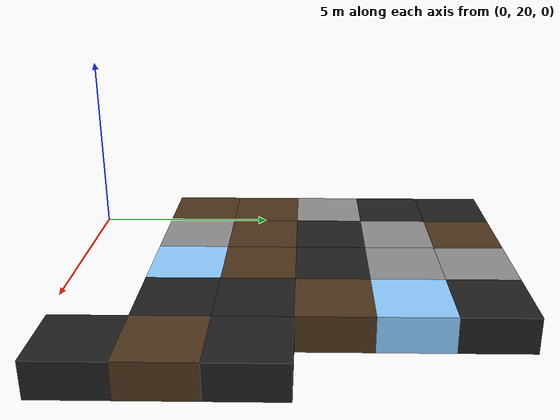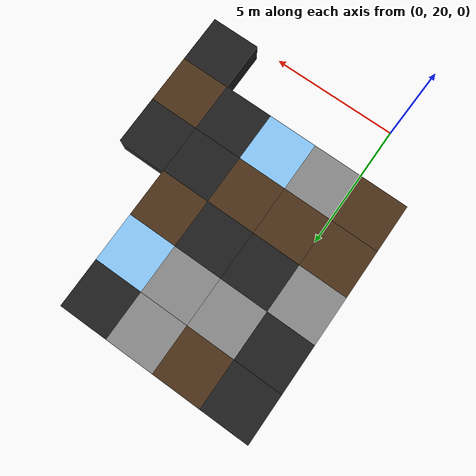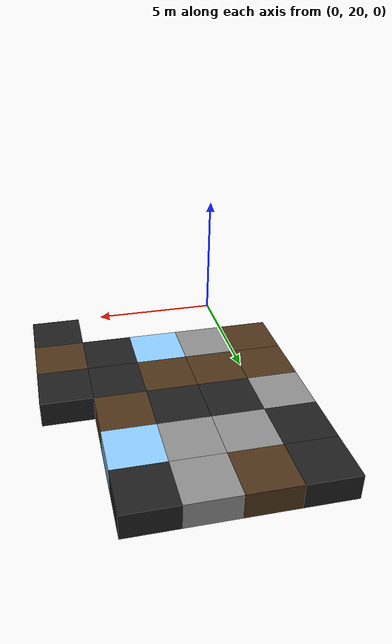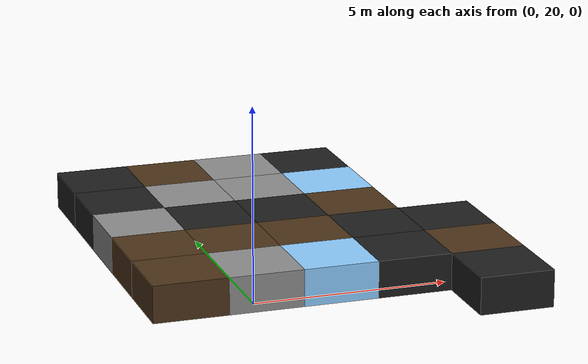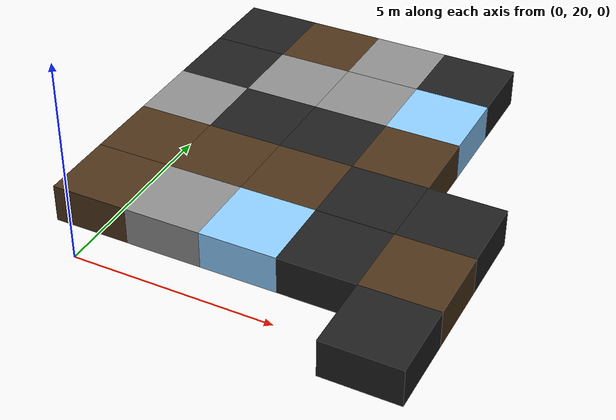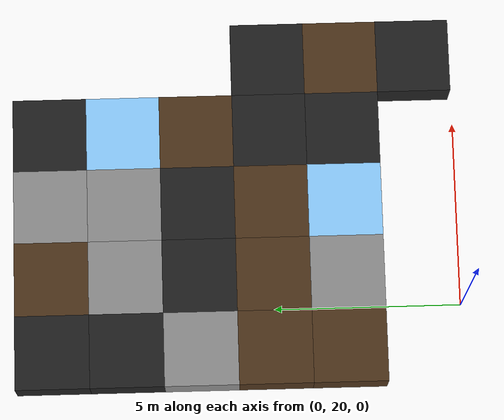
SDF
<sdf version="1.5">
 <world name="squares_example">
  <model name="tile_19_26">
   <static>true</static>
   <pose>7.000 21.000 -0.500 0 0 0</pose>
   <link name="link">
    <collision name="col">
     <geometry><box><size>2.0 2.0 1.0</size></box></geometry>
     <surface>
      <friction>
       <ode><mu>0.4</mu><mu2>0.15</mu2><fdir1>1 0 0</fdir1><slip1>0.0</slip1><slip2>0.0</slip2></ode>
       <torsional>
        <coefficient>0.03</coefficient>
        <use_patch_radius>false</use_patch_radius>
        <surface_radius>0.12</surface_radius>
        <ode><slip>0.0</slip></ode>
       </torsional>
      </friction>
      <bounce><restitution_coefficient>0.0</restitution_coefficient><threshold>0.1</threshold></bounce>
      <contact>
       <ode><kp>1000000000.0</kp><kd>1000000.0</kd><max_vel>0.01</max_vel><min_depth>0.0</min_depth></ode>
      </contact>
     </surface>
    </collision>
    <visual name="visual">
     <geometry><box><size>2.0 2.0 1.0</size></box></geometry>
     <material>
      <diffuse>0.12 0.12 0.12 1</diffuse>
      <ambient>0 0 0 0</ambient>
      <specular>0 0 0 1</specular>
      <emissive>0 0 0 1</emissive>
     </material>
    </visual>
   </link>
  </model>
  <model name="tile_15_27">
   <static>true</static>
   <pose>-1.000 23.000 -0.500 0 0 0</pose>
   <link name="link">
    <collision name="col">
     <geometry><box><size>2.0 2.0 1.0</size></box></geometry>
     <surface>
      <friction>
       <ode><mu>0.6</mu><mu2>0.4</mu2><fdir1>1 0 0</fdir1><slip1>0.08</slip1><slip2>0.08</slip2></ode>
       <torsional>
        <coefficient>0.03</coefficient>
        <use_patch_radius>false</use_patch_radius>
        <surface_radius>0.12</surface_radius>
        <ode><slip>0.0</slip></ode>
       </torsional>
      </friction>
      <bounce><restitution_coefficient>0.0</restitution_coefficient><threshold>0.1</threshold></bounce>
      <contact>
       <ode><kp>1000000.0</kp><kd>10000.0</kd><max_vel>0.01</max_vel><min_depth>0.0</min_depth></ode>
      </contact>
     </surface>
    </collision>
    <visual name="visual">
     <geometry><box><size>2.0 2.0 1.0</size></box></geometry>
     <material>
      <diffuse>0.30 0.20 0.10 1</diffuse>
      <ambient>0 0 0 0</ambient>
      <specular>0 0 0 1</specular>
      <emissive>0 0 0 1</emissive>
     </material>
    </visual>
   </link>
  </model>
  <model name="tile_16_27">
   <static>true</static>
   <pose>1.000 23.000 -0.500 0 0 0</pose>
   <link name="link">
    <collision name="col">
     <geometry><box><size>2.0 2.0 1.0</size></box></geometry>
     <surface>
      <friction>
       <ode><mu>0.8</mu><mu2>0.3</mu2><fdir1>1 0 0</fdir1><slip1>0.0</slip1><slip2>0.0</slip2></ode>
       <torsional>
        <coefficient>0.03</coefficient>
        <use_patch_radius>false</use_patch_radius>
        <surface_radius>0.12</surface_radius>
        <ode><slip>0.0</slip></ode>
       </torsional>
      </friction>
      <bounce><restitution_coefficient>0.0</restitution_coefficient><threshold>0.1</threshold></bounce>
      <contact>
       <ode><kp>10000000000.0</kp><kd>10000000.0</kd><max_vel>0.01</max_vel><min_depth>0.0</min_depth></ode>
      </contact>
     </surface>
    </collision>
    <visual name="visual">
     <geometry><box><size>2.0 2.0 1.0</size></box></geometry>
     <material>
      <diffuse>0.55 0.55 0.55 1</diffuse>
      <ambient>0 0 0 0</ambient>
      <specular>0 0 0 1</specular>
      <emissive>0 0 0 1</emissive>
     </material>
    </visual>
   </link>
  </model>
  <model name="tile_17_27">
   <static>true</static>
   <pose>3.000 23.000 -0.500 0 0 0</pose>
   <link name="link">
    <collision name="col">
     <geometry><box><size>2.0 2.0 1.0</size></box></geometry>
     <surface>
      <friction>
       <ode><mu>0.03</mu><mu2>0.02</mu2><fdir1>1 0 0</fdir1><slip1>0.03</slip1><slip2>0.03</slip2></ode>
       <torsional>
        <coefficient>0.005</coefficient>
        <use_patch_radius>false</use_patch_radius>
        <surface_radius>0.12</surface_radius>
        <ode><slip>0.01</slip></ode>
       </torsional>
      </friction>
      <bounce><restitution_coefficient>0.0</restitution_coefficient><threshold>0.1</threshold></bounce>
      <contact>
       <ode><kp>10000000.0</kp><kd>1000.0</kd><max_vel>0.01</max_vel><min_depth>0.0</min_depth></ode>
      </contact>
     </surface>
    </collision>
    <visual name="visual">
     <geometry><box><size>2.0 2.0 1.0</size></box></geometry>
     <material>
      <diffuse>0.55 0.80 1.00 1</diffuse>
      <ambient>0 0 0 0</ambient>
      <specular>0 0 0 1</specular>
      <emissive>0 0 0 1</emissive>
     </material>
    </visual>
   </link>
  </model>
  <model name="tile_18_27">
   <static>true</static>
   <pose>5.000 23.000 -0.500 0 0 0</pose>
   <link name="link">
    <collision name="col">
     <geometry><box><size>2.0 2.0 1.0</size></box></geometry>
     <surface>
      <friction>
       <ode><mu>0.4</mu><mu2>0.15</mu2><fdir1>1 0 0</fdir1><slip1>0.0</slip1><slip2>0.0</slip2></ode>
       <torsional>
        <coefficient>0.03</coefficient>
        <use_patch_radius>false</use_patch_radius>
        <surface_radius>0.12</surface_radius>
        <ode><slip>0.0</slip></ode>
       </torsional>
      </friction>
      <bounce><restitution_coefficient>0.0</restitution_coefficient><threshold>0.1</threshold></bounce>
      <contact>
       <ode><kp>1000000000.0</kp><kd>1000000.0</kd><max_vel>0.01</max_vel><min_depth>0.0</min_depth></ode>
      </contact>
     </surface>
    </collision>
    <visual name="visual">
     <geometry><box><size>2.0 2.0 1.0</size></box></geometry>
     <material>
      <diffuse>0.12 0.12 0.12 1</diffuse>
      <ambient>0 0 0 0</ambient>
      <specular>0 0 0 1</specular>
      <emissive>0 0 0 1</emissive>
     </material>
    </visual>
   </link>
  </model>
  <model name="tile_19_27">
   <static>true</static>
   <pose>7.000 23.000 -0.500 0 0 0</pose>
   <link name="link">
    <collision name="col">
     <geometry><box><size>2.0 2.0 1.0</size></box></geometry>
     <surface>
      <friction>
       <ode><mu>0.6</mu><mu2>0.4</mu2><fdir1>1 0 0</fdir1><slip1>0.08</slip1><slip2>0.08</slip2></ode>
       <torsional>
        <coefficient>0.03</coefficient>
        <use_patch_radius>false</use_patch_radius>
        <surface_radius>0.12</surface_radius>
        <ode><slip>0.0</slip></ode>
       </torsional>
      </friction>
      <bounce><restitution_coefficient>0.0</restitution_coefficient><threshold>0.1</threshold></bounce>
      <contact>
       <ode><kp>1000000.0</kp><kd>10000.0</kd><max_vel>0.01</max_vel><min_depth>0.0</min_depth></ode>
      </contact>
     </surface>
    </collision>
    <visual name="visual">
     <geometry><box><size>2.0 2.0 1.0</size></box></geometry>
     <material>
      <diffuse>0.30 0.20 0.10 1</diffuse>
      <ambient>0 0 0 0</ambient>
      <specular>0 0 0 1</specular>
      <emissive>0 0 0 1</emissive>
     </material>
    </visual>
   </link>
  </model>
  <model name="tile_15_28">
   <static>true</static>
   <pose>-1.000 25.000 -0.500 0 0 0</pose>
   <link name="link">
    <collision name="col">
     <geometry><box><size>2.0 2.0 1.0</size></box></geometry>
     <surface>
      <friction>
       <ode><mu>0.6</mu><mu2>0.4</mu2><fdir1>1 0 0</fdir1><slip1>0.08</slip1><slip2>0.08</slip2></ode>
       <torsional>
        <coefficient>0.03</coefficient>
        <use_patch_radius>false</use_patch_radius>
        <surface_radius>0.12</surface_radius>
        <ode><slip>0.0</slip></ode>
       </torsional>
      </friction>
      <bounce><restitution_coefficient>0.0</restitution_coefficient><threshold>0.1</threshold></bounce>
      <contact>
       <ode><kp>1000000.0</kp><kd>10000.0</kd><max_vel>0.01</max_vel><min_depth>0.0</min_depth></ode>
      </contact>
     </surface>
    </collision>
    <visual name="visual">
     <geometry><box><size>2.0 2.0 1.0</size></box></geometry>
     <material>
      <diffuse>0.30 0.20 0.10 1</diffuse>
      <ambient>0 0 0 0</ambient>
      <specular>0 0 0 1</specular>
      <emissive>0 0 0 1</emissive>
     </material>
    </visual>
   </link>
  </model>
  <model name="tile_16_28">
   <static>true</static>
   <pose>1.000 25.000 -0.500 0 0 0</pose>
   <link name="link">
    <collision name="col">
     <geometry><box><size>2.0 2.0 1.0</size></box></geometry>
     <surface>
      <friction>
       <ode><mu>0.6</mu><mu2>0.4</mu2><fdir1>1 0 0</fdir1><slip1>0.08</slip1><slip2>0.08</slip2></ode>
       <torsional>
        <coefficient>0.03</coefficient>
        <use_patch_radius>false</use_patch_radius>
        <surface_radius>0.12</surface_radius>
        <ode><slip>0.0</slip></ode>
       </torsional>
      </friction>
      <bounce><restitution_coefficient>0.0</restitution_coefficient><threshold>0.1</threshold></bounce>
      <contact>
       <ode><kp>1000000.0</kp><kd>10000.0</kd><max_vel>0.01</max_vel><min_depth>0.0</min_depth></ode>
      </contact>
     </surface>
    </collision>
    <visual name="visual">
     <geometry><box><size>2.0 2.0 1.0</size></box></geometry>
     <material>
      <diffuse>0.30 0.20 0.10 1</diffuse>
      <ambient>0 0 0 0</ambient>
      <specular>0 0 0 1</specular>
      <emissive>0 0 0 1</emissive>
     </material>
    </visual>
   </link>
  </model>
  <model name="tile_17_28">
   <static>true</static>
   <pose>3.000 25.000 -0.500 0 0 0</pose>
   <link name="link">
    <collision name="col">
     <geometry><box><size>2.0 2.0 1.0</size></box></geometry>
     <surface>
      <friction>
       <ode><mu>0.6</mu><mu2>0.4</mu2><fdir1>1 0 0</fdir1><slip1>0.08</slip1><slip2>0.08</slip2></ode>
       <torsional>
        <coefficient>0.03</coefficient>
        <use_patch_radius>false</use_patch_radius>
        <surface_radius>0.12</surface_radius>
        <ode><slip>0.0</slip></ode>
       </torsional>
      </friction>
      <bounce><restitution_coefficient>0.0</restitution_coefficient><threshold>0.1</threshold></bounce>
      <contact>
       <ode><kp>1000000.0</kp><kd>10000.0</kd><max_vel>0.01</max_vel><min_depth>0.0</min_depth></ode>
      </contact>
     </surface>
    </collision>
    <visual name="visual">
     <geometry><box><size>2.0 2.0 1.0</size></box></geometry>
     <material>
      <diffuse>0.30 0.20 0.10 1</diffuse>
      <ambient>0 0 0 0</ambient>
      <specular>0 0 0 1</specular>
      <emissive>0 0 0 1</emissive>
     </material>
    </visual>
   </link>
  </model>
  <model name="tile_18_28">
   <static>true</static>
   <pose>5.000 25.000 -0.500 0 0 0</pose>
   <link name="link">
    <collision name="col">
     <geometry><box><size>2.0 2.0 1.0</size></box></geometry>
     <surface>
      <friction>
       <ode><mu>0.4</mu><mu2>0.15</mu2><fdir1>1 0 0</fdir1><slip1>0.0</slip1><slip2>0.0</slip2></ode>
       <torsional>
        <coefficient>0.03</coefficient>
        <use_patch_radius>false</use_patch_radius>
        <surface_radius>0.12</surface_radius>
        <ode><slip>0.0</slip></ode>
       </torsional>
      </friction>
      <bounce><restitution_coefficient>0.0</restitution_coefficient><threshold>0.1</threshold></bounce>
      <contact>
       <ode><kp>1000000000.0</kp><kd>1000000.0</kd><max_vel>0.01</max_vel><min_depth>0.0</min_depth></ode>
      </contact>
     </surface>
    </collision>
    <visual name="visual">
     <geometry><box><size>2.0 2.0 1.0</size></box></geometry>
     <material>
      <diffuse>0.12 0.12 0.12 1</diffuse>
      <ambient>0 0 0 0</ambient>
      <specular>0 0 0 1</specular>
      <emissive>0 0 0 1</emissive>
     </material>
    </visual>
   </link>
  </model>
  <model name="tile_19_28">
   <static>true</static>
   <pose>7.000 25.000 -0.500 0 0 0</pose>
   <link name="link">
    <collision name="col">
     <geometry><box><size>2.0 2.0 1.0</size></box></geometry>
     <surface>
      <friction>
       <ode><mu>0.4</mu><mu2>0.15</mu2><fdir1>1 0 0</fdir1><slip1>0.0</slip1><slip2>0.0</slip2></ode>
       <torsional>
        <coefficient>0.03</coefficient>
        <use_patch_radius>false</use_patch_radius>
        <surface_radius>0.12</surface_radius>
        <ode><slip>0.0</slip></ode>
       </torsional>
      </friction>
      <bounce><restitution_coefficient>0.0</restitution_coefficient><threshold>0.1</threshold></bounce>
      <contact>
       <ode><kp>1000000000.0</kp><kd>1000000.0</kd><max_vel>0.01</max_vel><min_depth>0.0</min_depth></ode>
      </contact>
     </surface>
    </collision>
    <visual name="visual">
     <geometry><box><size>2.0 2.0 1.0</size></box></geometry>
     <material>
      <diffuse>0.12 0.12 0.12 1</diffuse>
      <ambient>0 0 0 0</ambient>
      <specular>0 0 0 1</specular>
      <emissive>0 0 0 1</emissive>
     </material>
    </visual>
   </link>
  </model>
  <model name="tile_15_29">
   <static>true</static>
   <pose>-1.000 27.000 -0.500 0 0 0</pose>
   <link name="link">
    <collision name="col">
     <geometry><box><size>2.0 2.0 1.0</size></box></geometry>
     <surface>
      <friction>
       <ode><mu>0.8</mu><mu2>0.3</mu2><fdir1>1 0 0</fdir1><slip1>0.0</slip1><slip2>0.0</slip2></ode>
       <torsional>
        <coefficient>0.03</coefficient>
        <use_patch_radius>false</use_patch_radius>
        <surface_radius>0.12</surface_radius>
        <ode><slip>0.0</slip></ode>
       </torsional>
      </friction>
      <bounce><restitution_coefficient>0.0</restitution_coefficient><threshold>0.1</threshold></bounce>
      <contact>
       <ode><kp>10000000000.0</kp><kd>10000000.0</kd><max_vel>0.01</max_vel><min_depth>0.0</min_depth></ode>
      </contact>
     </surface>
    </collision>
    <visual name="visual">
     <geometry><box><size>2.0 2.0 1.0</size></box></geometry>
     <material>
      <diffuse>0.55 0.55 0.55 1</diffuse>
      <ambient>0 0 0 0</ambient>
      <specular>0 0 0 1</specular>
      <emissive>0 0 0 1</emissive>
     </material>
    </visual>
   </link>
  </model>
  <model name="tile_16_29">
   <static>true</static>
   <pose>1.000 27.000 -0.500 0 0 0</pose>
   <link name="link">
    <collision name="col">
     <geometry><box><size>2.0 2.0 1.0</size></box></geometry>
     <surface>
      <friction>
       <ode><mu>0.4</mu><mu2>0.15</mu2><fdir1>1 0 0</fdir1><slip1>0.0</slip1><slip2>0.0</slip2></ode>
       <torsional>
        <coefficient>0.03</coefficient>
        <use_patch_radius>false</use_patch_radius>
        <surface_radius>0.12</surface_radius>
        <ode><slip>0.0</slip></ode>
       </torsional>
      </friction>
      <bounce><restitution_coefficient>0.0</restitution_coefficient><threshold>0.1</threshold></bounce>
      <contact>
       <ode><kp>1000000000.0</kp><kd>1000000.0</kd><max_vel>0.01</max_vel><min_depth>0.0</min_depth></ode>
      </contact>
     </surface>
    </collision>
    <visual name="visual">
     <geometry><box><size>2.0 2.0 1.0</size></box></geometry>
     <material>
      <diffuse>0.12 0.12 0.12 1</diffuse>
      <ambient>0 0 0 0</ambient>
      <specular>0 0 0 1</specular>
      <emissive>0 0 0 1</emissive>
     </material>
    </visual>
   </link>
  </model>
  <model name="tile_17_29">
   <static>true</static>
   <pose>3.000 27.000 -0.500 0 0 0</pose>
   <link name="link">
    <collision name="col">
     <geometry><box><size>2.0 2.0 1.0</size></box></geometry>
     <surface>
      <friction>
       <ode><mu>0.4</mu><mu2>0.15</mu2><fdir1>1 0 0</fdir1><slip1>0.0</slip1><slip2>0.0</slip2></ode>
       <torsional>
        <coefficient>0.03</coefficient>
        <use_patch_radius>false</use_patch_radius>
        <surface_radius>0.12</surface_radius>
        <ode><slip>0.0</slip></ode>
       </torsional>
      </friction>
      <bounce><restitution_coefficient>0.0</restitution_coefficient><threshold>0.1</threshold></bounce>
      <contact>
       <ode><kp>1000000000.0</kp><kd>1000000.0</kd><max_vel>0.01</max_vel><min_depth>0.0</min_depth></ode>
      </contact>
     </surface>
    </collision>
    <visual name="visual">
     <geometry><box><size>2.0 2.0 1.0</size></box></geometry>
     <material>
      <diffuse>0.12 0.12 0.12 1</diffuse>
      <ambient>0 0 0 0</ambient>
      <specular>0 0 0 1</specular>
      <emissive>0 0 0 1</emissive>
     </material>
    </visual>
   </link>
  </model>
  <model name="tile_18_29">
   <static>true</static>
   <pose>5.000 27.000 -0.500 0 0 0</pose>
   <link name="link">
    <collision name="col">
     <geometry><box><size>2.0 2.0 1.0</size></box></geometry>
     <surface>
      <friction>
       <ode><mu>0.6</mu><mu2>0.4</mu2><fdir1>1 0 0</fdir1><slip1>0.08</slip1><slip2>0.08</slip2></ode>
       <torsional>
        <coefficient>0.03</coefficient>
        <use_patch_radius>false</use_patch_radius>
        <surface_radius>0.12</surface_radius>
        <ode><slip>0.0</slip></ode>
       </torsional>
      </friction>
      <bounce><restitution_coefficient>0.0</restitution_coefficient><threshold>0.1</threshold></bounce>
      <contact>
       <ode><kp>1000000.0</kp><kd>10000.0</kd><max_vel>0.01</max_vel><min_depth>0.0</min_depth></ode>
      </contact>
     </surface>
    </collision>
    <visual name="visual">
     <geometry><box><size>2.0 2.0 1.0</size></box></geometry>
     <material>
      <diffuse>0.30 0.20 0.10 1</diffuse>
      <ambient>0 0 0 0</ambient>
      <specular>0 0 0 1</specular>
      <emissive>0 0 0 1</emissive>
     </material>
    </visual>
   </link>
  </model>
  <model name="tile_15_30">
   <static>true</static>
   <pose>-1.000 29.000 -0.500 0 0 0</pose>
   <link name="link">
    <collision name="col">
     <geometry><box><size>2.0 2.0 1.0</size></box></geometry>
     <surface>
      <friction>
       <ode><mu>0.4</mu><mu2>0.15</mu2><fdir1>1 0 0</fdir1><slip1>0.0</slip1><slip2>0.0</slip2></ode>
       <torsional>
        <coefficient>0.03</coefficient>
        <use_patch_radius>false</use_patch_radius>
        <surface_radius>0.12</surface_radius>
        <ode><slip>0.0</slip></ode>
       </torsional>
      </friction>
      <bounce><restitution_coefficient>0.0</restitution_coefficient><threshold>0.1</threshold></bounce>
      <contact>
       <ode><kp>1000000000.0</kp><kd>1000000.0</kd><max_vel>0.01</max_vel><min_depth>0.0</min_depth></ode>
      </contact>
     </surface>
    </collision>
    <visual name="visual">
     <geometry><box><size>2.0 2.0 1.0</size></box></geometry>
     <material>
      <diffuse>0.12 0.12 0.12 1</diffuse>
      <ambient>0 0 0 0</ambient>
      <specular>0 0 0 1</specular>
      <emissive>0 0 0 1</emissive>
     </material>
    </visual>
   </link>
  </model>
  <model name="tile_16_30">
   <static>true</static>
   <pose>1.000 29.000 -0.500 0 0 0</pose>
   <link name="link">
    <collision name="col">
     <geometry><box><size>2.0 2.0 1.0</size></box></geometry>
     <surface>
      <friction>
       <ode><mu>0.8</mu><mu2>0.3</mu2><fdir1>1 0 0</fdir1><slip1>0.0</slip1><slip2>0.0</slip2></ode>
       <torsional>
        <coefficient>0.03</coefficient>
        <use_patch_radius>false</use_patch_radius>
        <surface_radius>0.12</surface_radius>
        <ode><slip>0.0</slip></ode>
       </torsional>
      </friction>
      <bounce><restitution_coefficient>0.0</restitution_coefficient><threshold>0.1</threshold></bounce>
      <contact>
       <ode><kp>10000000000.0</kp><kd>10000000.0</kd><max_vel>0.01</max_vel><min_depth>0.0</min_depth></ode>
      </contact>
     </surface>
    </collision>
    <visual name="visual">
     <geometry><box><size>2.0 2.0 1.0</size></box></geometry>
     <material>
      <diffuse>0.55 0.55 0.55 1</diffuse>
      <ambient>0 0 0 0</ambient>
      <specular>0 0 0 1</specular>
      <emissive>0 0 0 1</emissive>
     </material>
    </visual>
   </link>
  </model>
  <model name="tile_17_30">
   <static>true</static>
   <pose>3.000 29.000 -0.500 0 0 0</pose>
   <link name="link">
    <collision name="col">
     <geometry><box><size>2.0 2.0 1.0</size></box></geometry>
     <surface>
      <friction>
       <ode><mu>0.8</mu><mu2>0.3</mu2><fdir1>1 0 0</fdir1><slip1>0.0</slip1><slip2>0.0</slip2></ode>
       <torsional>
        <coefficient>0.03</coefficient>
        <use_patch_radius>false</use_patch_radius>
        <surface_radius>0.12</surface_radius>
        <ode><slip>0.0</slip></ode>
       </torsional>
      </friction>
      <bounce><restitution_coefficient>0.0</restitution_coefficient><threshold>0.1</threshold></bounce>
      <contact>
       <ode><kp>10000000000.0</kp><kd>10000000.0</kd><max_vel>0.01</max_vel><min_depth>0.0</min_depth></ode>
      </contact>
     </surface>
    </collision>
    <visual name="visual">
     <geometry><box><size>2.0 2.0 1.0</size></box></geometry>
     <material>
      <diffuse>0.55 0.55 0.55 1</diffuse>
      <ambient>0 0 0 0</ambient>
      <specular>0 0 0 1</specular>
      <emissive>0 0 0 1</emissive>
     </material>
    </visual>
   </link>
  </model>
  <model name="tile_18_30">
   <static>true</static>
   <pose>5.000 29.000 -0.500 0 0 0</pose>
   <link name="link">
    <collision name="col">
     <geometry><box><size>2.0 2.0 1.0</size></box></geometry>
     <surface>
      <friction>
       <ode><mu>0.03</mu><mu2>0.02</mu2><fdir1>1 0 0</fdir1><slip1>0.03</slip1><slip2>0.03</slip2></ode>
       <torsional>
        <coefficient>0.005</coefficient>
        <use_patch_radius>false</use_patch_radius>
        <surface_radius>0.12</surface_radius>
        <ode><slip>0.01</slip></ode>
       </torsional>
      </friction>
      <bounce><restitution_coefficient>0.0</restitution_coefficient><threshold>0.1</threshold></bounce>
      <contact>
       <ode><kp>10000000.0</kp><kd>1000.0</kd><max_vel>0.01</max_vel><min_depth>0.0</min_depth></ode>
      </contact>
     </surface>
    </collision>
    <visual name="visual">
     <geometry><box><size>2.0 2.0 1.0</size></box></geometry>
     <material>
      <diffuse>0.55 0.80 1.00 1</diffuse>
      <ambient>0 0 0 0</ambient>
      <specular>0 0 0 1</specular>
      <emissive>0 0 0 1</emissive>
     </material>
    </visual>
   </link>
  </model>
  <model name="tile_15_31">
   <static>true</static>
   <pose>-1.000 31.000 -0.500 0 0 0</pose>
   <link name="link">
    <collision name="col">
     <geometry><box><size>2.0 2.0 1.0</size></box></geometry>
     <surface>
      <friction>
       <ode><mu>0.4</mu><mu2>0.15</mu2><fdir1>1 0 0</fdir1><slip1>0.0</slip1><slip2>0.0</slip2></ode>
       <torsional>
        <coefficient>0.03</coefficient>
        <use_patch_radius>false</use_patch_radius>
        <surface_radius>0.12</surface_radius>
        <ode><slip>0.0</slip></ode>
       </torsional>
      </friction>
      <bounce><restitution_coefficient>0.0</restitution_coefficient><threshold>0.1</threshold></bounce>
      <contact>
       <ode><kp>1000000000.0</kp><kd>1000000.0</kd><max_vel>0.01</max_vel><min_depth>0.0</min_depth></ode>
      </contact>
     </surface>
    </collision>
    <visual name="visual">
     <geometry><box><size>2.0 2.0 1.0</size></box></geometry>
     <material>
      <diffuse>0.12 0.12 0.12 1</diffuse>
      <ambient>0 0 0 0</ambient>
      <specular>0 0 0 1</specular>
      <emissive>0 0 0 1</emissive>
     </material>
    </visual>
   </link>
  </model>
  <model name="tile_16_31">
   <static>true</static>
   <pose>1.000 31.000 -0.500 0 0 0</pose>
   <link name="link">
    <collision name="col">
     <geometry><box><size>2.0 2.0 1.0</size></box></geometry>
     <surface>
      <friction>
       <ode><mu>0.6</mu><mu2>0.4</mu2><fdir1>1 0 0</fdir1><slip1>0.08</slip1><slip2>0.08</slip2></ode>
       <torsional>
        <coefficient>0.03</coefficient>
        <use_patch_radius>false</use_patch_radius>
        <surface_radius>0.12</surface_radius>
        <ode><slip>0.0</slip></ode>
       </torsional>
      </friction>
      <bounce><restitution_coefficient>0.0</restitution_coefficient><threshold>0.1</threshold></bounce>
      <contact>
       <ode><kp>1000000.0</kp><kd>10000.0</kd><max_vel>0.01</max_vel><min_depth>0.0</min_depth></ode>
      </contact>
     </surface>
    </collision>
    <visual name="visual">
     <geometry><box><size>2.0 2.0 1.0</size></box></geometry>
     <material>
      <diffuse>0.30 0.20 0.10 1</diffuse>
      <ambient>0 0 0 0</ambient>
      <specular>0 0 0 1</specular>
      <emissive>0 0 0 1</emissive>
     </material>
    </visual>
   </link>
  </model>
  <model name="tile_17_31">
   <static>true</static>
   <pose>3.000 31.000 -0.500 0 0 0</pose>
   <link name="link">
    <collision name="col">
     <geometry><box><size>2.0 2.0 1.0</size></box></geometry>
     <surface>
      <friction>
       <ode><mu>0.8</mu><mu2>0.3</mu2><fdir1>1 0 0</fdir1><slip1>0.0</slip1><slip2>0.0</slip2></ode>
       <torsional>
        <coefficient>0.03</coefficient>
        <use_patch_radius>false</use_patch_radius>
        <surface_radius>0.12</surface_radius>
        <ode><slip>0.0</slip></ode>
       </torsional>
      </friction>
      <bounce><restitution_coefficient>0.0</restitution_coefficient><threshold>0.1</threshold></bounce>
      <contact>
       <ode><kp>10000000000.0</kp><kd>10000000.0</kd><max_vel>0.01</max_vel><min_depth>0.0</min_depth></ode>
      </contact>
     </surface>
    </collision>
    <visual name="visual">
     <geometry><box><size>2.0 2.0 1.0</size></box></geometry>
     <material>
      <diffuse>0.55 0.55 0.55 1</diffuse>
      <ambient>0 0 0 0</ambient>
      <specular>0 0 0 1</specular>
      <emissive>0 0 0 1</emissive>
     </material>
    </visual>
   </link>
  </model>
  <model name="tile_18_31">
   <static>true</static>
   <pose>5.000 31.000 -0.500 0 0 0</pose>
   <link name="link">
    <collision name="col">
     <geometry><box><size>2.0 2.0 1.0</size></box></geometry>
     <surface>
      <friction>
       <ode><mu>0.4</mu><mu2>0.15</mu2><fdir1>1 0 0</fdir1><slip1>0.0</slip1><slip2>0.0</slip2></ode>
       <torsional>
        <coefficient>0.03</coefficient>
        <use_patch_radius>false</use_patch_radius>
        <surface_radius>0.12</surface_radius>
        <ode><slip>0.0</slip></ode>
       </torsional>
      </friction>
      <bounce><restitution_coefficient>0.0</restitution_coefficient><threshold>0.1</threshold></bounce>
      <contact>
       <ode><kp>1000000000.0</kp><kd>1000000.0</kd><max_vel>0.01</max_vel><min_depth>0.0</min_depth></ode>
      </contact>
     </surface>
    </collision>
    <visual name="visual">
     <geometry><box><size>2.0 2.0 1.0</size></box></geometry>
     <material>
      <diffuse>0.12 0.12 0.12 1</diffuse>
      <ambient>0 0 0 0</ambient>
      <specular>0 0 0 1</specular>
      <emissive>0 0 0 1</emissive>
     </material>
    </visual>
   </link>
  </model>
 </world>
</sdf>
